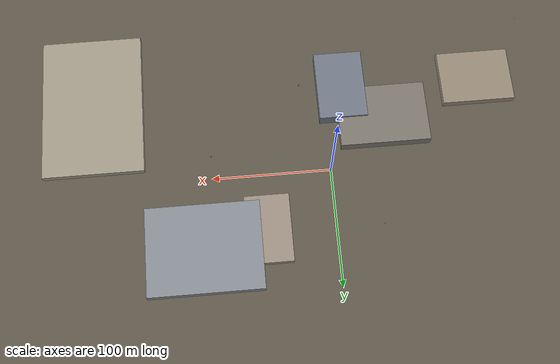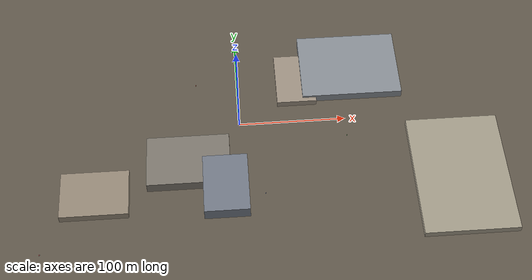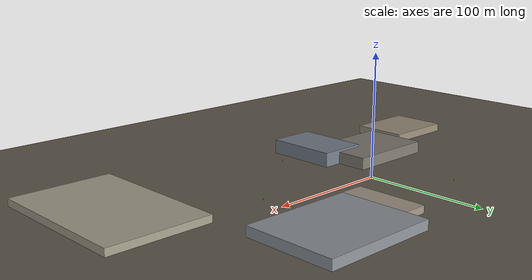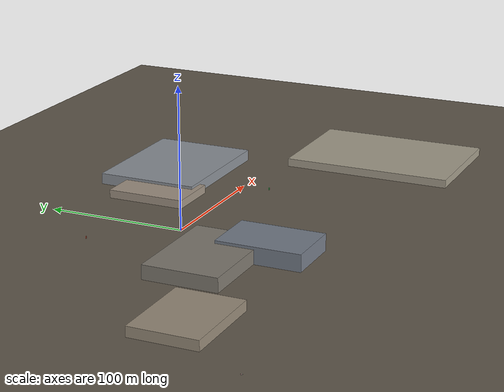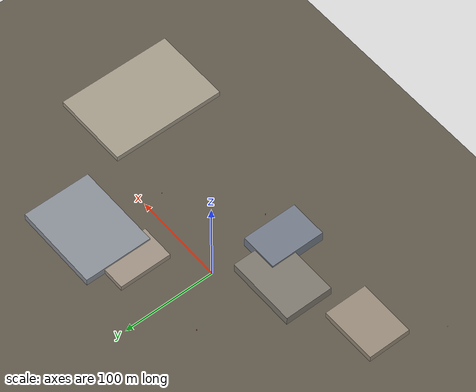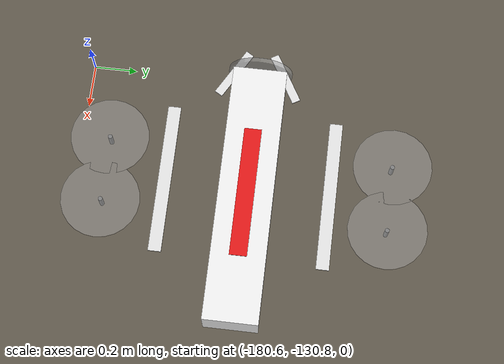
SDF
<sdf version="1.9">
 <world name="surveillance_zone">
  <physics name="1ms" type="ode">
   <max_step_size>0.001</max_step_size>
   <real_time_factor>1.0</real_time_factor>
  </physics>
  <light name="sun" type="directional">
   <pose>0 0 100 0 0 0</pose>
   <diffuse>0.85 0.85 0.85 1</diffuse>
   <specular>0.2 0.2 0.2 1</specular>
   <direction>0.5 -0.5 -1</direction>
  </light>
  <light name="ambient_fill" type="directional">
   <cast_shadows>false</cast_shadows>
   <pose>0 0 50 0 0 0</pose>
   <diffuse>0.4 0.4 0.45 1</diffuse>
   <specular>0.0 0.0 0.0 1</specular>
   <direction>-0.5 0.5 -1</direction>
  </light>
  <model name="ground_plane">
   <static>true</static>
   <link name="link">
    <collision name="collision">
     <geometry><plane><normal>0 0 1</normal><size>1000 1000</size></plane></geometry>
    </collision>
    <visual name="visual">
     <geometry><plane><normal>0 0 1</normal><size>1000 1000</size></plane></geometry>
     <material>
      <ambient>0.30 0.28 0.25 1</ambient>
      <diffuse>0.38 0.35 0.30 1</diffuse>
      <specular>0.05 0.05 0.05 1</specular>
     </material>
    </visual>
   </link>
  </model>
  <model name="building_0">
   <static>true</static>
   <pose>199.0 -73.0 3.0 0 0 0</pose>
   <link name="link">
    <collision name="col"><geometry><box><size>85.6 124.8 6.0</size></box></geometry></collision>
    <visual name="vis">
     <geometry><box><size>85.6 124.8 6.0</size></box></geometry>
     <material>
      <ambient>0.60 0.58 0.52 1</ambient>
      <diffuse>0.65 0.62 0.55 1</diffuse>
      <specular>0.1 0.1 0.1 1</specular>
     </material>
    </visual>
   </link>
  </model>
  <model name="building_1">
   <static>true</static>
   <pose>109.6 60.4 4.0 0 0 0</pose>
   <link name="link">
    <collision name="col"><geometry><box><size>95.2 73.9 8.0</size></box></geometry></collision>
    <visual name="vis">
     <geometry><box><size>95.2 73.9 8.0</size></box></geometry>
     <material>
      <ambient>0.50 0.52 0.55 1</ambient>
      <diffuse>0.55 0.57 0.60 1</diffuse>
      <specular>0.15 0.15 0.15 1</specular>
     </material>
    </visual>
   </link>
  </model>
  <model name="building_2">
   <static>true</static>
   <pose>-48.6 -43.9 5.0 0 0 0</pose>
   <link name="link">
    <collision name="col"><geometry><box><size>76.2 52.7 10.0</size></box></geometry></collision>
    <visual name="vis">
     <geometry><box><size>76.2 52.7 10.0</size></box></geometry>
     <material>
      <ambient>0.45 0.43 0.40 1</ambient>
      <diffuse>0.50 0.48 0.44 1</diffuse>
      <specular>0.1 0.1 0.1 1</specular>
     </material>
    </visual>
   </link>
  </model>
  <model name="building_3">
   <static>true</static>
   <pose>-133.6 -73.6 3.5 0 0 0</pose>
   <link name="link">
    <collision name="col"><geometry><box><size>61.7 46.8 7.0</size></box></geometry></collision>
    <visual name="vis">
     <geometry><box><size>61.7 46.8 7.0</size></box></geometry>
     <material>
      <ambient>0.55 0.50 0.45 1</ambient>
      <diffuse>0.60 0.55 0.48 1</diffuse>
      <specular>0.08 0.08 0.08 1</specular>
     </material>
    </visual>
   </link>
  </model>
  <model name="building_4">
   <static>true</static>
   <pose>-15.2 -72.9 6.0 0 0 0</pose>
   <link name="link">
    <collision name="col"><geometry><box><size>41.0 60.1 12.0</size></box></geometry></collision>
    <visual name="vis">
     <geometry><box><size>41.0 60.1 12.0</size></box></geometry>
     <material>
      <ambient>0.42 0.45 0.50 1</ambient>
      <diffuse>0.46 0.49 0.54 1</diffuse>
      <specular>0.2 0.2 0.2 1</specular>
     </material>
    </visual>
   </link>
  </model>
  <model name="building_5">
   <static>true</static>
   <pose>56.1 47.9 3.0 0 0 0</pose>
   <link name="link">
    <collision name="col"><geometry><box><size>37.5 57.3 6.0</size></box></geometry></collision>
    <visual name="vis">
     <geometry><box><size>37.5 57.3 6.0</size></box></geometry>
     <material>
      <ambient>0.58 0.54 0.48 1</ambient>
      <diffuse>0.63 0.58 0.52 1</diffuse>
      <specular>0.08 0.08 0.08 1</specular>
     </material>
    </visual>
   </link>
  </model>
  <model name="personne_quai">
   <static>true</static>
   <pose>20 -80 0 0 0 0</pose>
   <link name="link">
    <visual name="corps">
     <pose>0 0 0.85 0 0 0</pose>
     <geometry><cylinder><radius>0.25</radius><length>1.7</length></cylinder></geometry>
     <material><ambient>0.2 0.4 0.8 1</ambient><diffuse>0.2 0.4 0.8 1</diffuse></material>
    </visual>
    <visual name="tete">
     <pose>0 0 1.85 0 0 0</pose>
     <geometry><sphere><radius>0.15</radius></sphere></geometry>
     <material><ambient>0.85 0.7 0.55 1</ambient><diffuse>0.85 0.7 0.55 1</diffuse></material>
    </visual>
    <collision name="col">
     <pose>0 0 0.85 0 0 0</pose>
     <geometry><cylinder><radius>0.25</radius><length>1.7</length></cylinder></geometry>
    </collision>
   </link>
  </model>
  <model name="personne_industrielle">
   <static>true</static>
   <pose>-40 50 0 0 0 0</pose>
   <link name="link">
    <visual name="corps">
     <pose>0 0 0.85 0 0 0</pose>
     <geometry><cylinder><radius>0.25</radius><length>1.7</length></cylinder></geometry>
     <material><ambient>0.8 0.3 0.2 1</ambient><diffuse>0.8 0.3 0.2 1</diffuse></material>
    </visual>
    <visual name="tete">
     <pose>0 0 1.85 0 0 0</pose>
     <geometry><sphere><radius>0.15</radius></sphere></geometry>
     <material><ambient>0.85 0.7 0.55 1</ambient><diffuse>0.85 0.7 0.55 1</diffuse></material>
    </visual>
    <collision name="col">
     <pose>0 0 0.85 0 0 0</pose>
     <geometry><cylinder><radius>0.25</radius><length>1.7</length></cylinder></geometry>
    </collision>
   </link>
  </model>
  <model name="personne_perimetre">
   <static>true</static>
   <pose>100 -20 0 0 0 0</pose>
   <link name="link">
    <visual name="corps">
     <pose>0 0 0.85 0 0 0</pose>
     <geometry><cylinder><radius>0.25</radius><length>1.7</length></cylinder></geometry>
     <material><ambient>0.2 0.7 0.3 1</ambient><diffuse>0.2 0.7 0.3 1</diffuse></material>
    </visual>
    <visual name="tete">
     <pose>0 0 1.85 0 0 0</pose>
     <geometry><sphere><radius>0.15</radius></sphere></geometry>
     <material><ambient>0.85 0.7 0.55 1</ambient><diffuse>0.85 0.7 0.55 1</diffuse></material>
    </visual>
    <collision name="col">
     <pose>0 0 0.85 0 0 0</pose>
     <geometry><cylinder><radius>0.25</radius><length>1.7</length></cylinder></geometry>
    </collision>
   </link>
  </model>
  <include><name>isr_drone</name><uri>model://isr_drone</uri><pose>-180 -130 0.1 0 0 0</pose></include>
 </world>
</sdf>

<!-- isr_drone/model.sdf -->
<sdf version="1.9">
  <model name="isr_drone">
    <static>false</static>

    <!-- BASE LINK — Fuselage VTOL                  -->
    <link name="base_link">
      <pose>0 0 0 0 0 0</pose>

      <inertial>
        <mass>4.5</mass>
        <inertia>
          <!-- I = m/12 * (b² + c²) pour un box -->
          <ixx>0.0353</ixx>
          <iyy>0.5535</iyy>
          <izz>0.5625</izz>
          <ixy>0</ixy>
          <ixz>0</ixz>
          <iyz>0</iyz>
        </inertia>
      </inertial>

      <!-- Fuselage principal — blanc mat -->
      <visual name="fuselage_visual">
        <geometry>
          <box><size>1.2 0.25 0.18</size></box>
        </geometry>
        <material>
          <ambient>0.9 0.9 0.9 1</ambient>
          <diffuse>0.95 0.95 0.95 1</diffuse>
          <specular>0.2 0.2 0.2 1</specular>
        </material>
      </visual>

      <!-- Bande rouge identification sur le dessus -->
      <visual name="stripe_visual">
        <pose>0 0 0.091 0 0 0</pose>
        <geometry>
          <box><size>0.6 0.08 0.005</size></box>
        </geometry>
        <material>
          <ambient>0.8 0.0 0.0 1</ambient>
          <diffuse>0.9 0.1 0.1 1</diffuse>
        </material>
      </visual>

      <collision name="fuselage_collision">
        <geometry>
          <box><size>1.2 0.25 0.18</size></box>
        </geometry>
      </collision>
    </link>

    <!-- AILES                                      -->

    <!-- Aile gauche -->
    <link name="wing_left">
      <pose relative_to="base_link">-0.05 0.38 0 0 0 0</pose>
      <inertial>
        <mass>0.15</mass>
        <inertia>
          <ixx>0.00005</ixx><iyy>0.0061</iyy><izz>0.0061</izz>
          <ixy>0</ixy><ixz>0</ixz><iyz>0</iyz>
        </inertia>
      </inertial>
      <visual name="wing_left_visual">
        <geometry>
          <box><size>0.7 0.06 0.008</size></box>
        </geometry>
        <material>
          <ambient>0.85 0.85 0.85 1</ambient>
          <diffuse>0.9 0.9 0.9 1</diffuse>
        </material>
      </visual>
    </link>
    <joint name="wing_left_joint" type="fixed">
      <parent>base_link</parent>
      <child>wing_left</child>
    </joint>

    <!-- Aile droite -->
    <link name="wing_right">
      <pose relative_to="base_link">-0.05 -0.38 0 0 0 0</pose>
      <inertial>
        <mass>0.15</mass>
        <inertia>
          <ixx>0.00005</ixx><iyy>0.0061</iyy><izz>0.0061</izz>
          <ixy>0</ixy><ixz>0</ixz><iyz>0</iyz>
        </inertia>
      </inertial>
      <visual name="wing_right_visual">
        <geometry>
          <box><size>0.7 0.06 0.008</size></box>
        </geometry>
        <material>
          <ambient>0.85 0.85 0.85 1</ambient>
          <diffuse>0.9 0.9 0.9 1</diffuse>
        </material>
      </visual>
    </link>
    <joint name="wing_right_joint" type="fixed">
      <parent>base_link</parent>
      <child>wing_right</child>
    </joint>

    <!-- EMPENNAGE V                                -->

    <!-- Queue gauche -->
    <link name="tail_left">
      <pose relative_to="base_link">-0.58 0.12 0.05 0 0 0.52</pose>
      <inertial>
        <mass>0.05</mass>
        <inertia>
          <ixx>0.00001</ixx><iyy>0.00026</iyy><izz>0.00026</izz>
          <ixy>0</ixy><ixz>0</ixz><iyz>0</iyz>
        </inertia>
      </inertial>
      <visual name="tail_left_visual">
        <geometry>
          <box><size>0.25 0.04 0.006</size></box>
        </geometry>
        <material>
          <ambient>0.85 0.85 0.85 1</ambient>
          <diffuse>0.9 0.9 0.9 1</diffuse>
        </material>
      </visual>
    </link>
    <joint name="tail_left_joint" type="fixed">
      <parent>base_link</parent>
      <child>tail_left</child>
    </joint>

    <!-- Queue droite -->
    <link name="tail_right">
      <pose relative_to="base_link">-0.58 -0.12 0.05 0 0 -0.52</pose>
      <inertial>
        <mass>0.05</mass>
        <inertia>
          <ixx>0.00001</ixx><iyy>0.00026</iyy><izz>0.00026</izz>
          <ixy>0</ixy><ixz>0</ixz><iyz>0</iyz>
        </inertia>
      </inertial>
      <visual name="tail_right_visual">
        <geometry>
          <box><size>0.25 0.04 0.006</size></box>
        </geometry>
        <material>
          <ambient>0.85 0.85 0.85 1</ambient>
          <diffuse>0.9 0.9 0.9 1</diffuse>
        </material>
      </visual>
    </link>
    <joint name="tail_right_joint" type="fixed">
      <parent>base_link</parent>
      <child>tail_right</child>
    </joint>

    <!-- 4 NACELLES ROTORS VTOL                     -->

    <!-- Rotor Front-Left -->
    <link name="rotor_fl">
      <pose relative_to="base_link">0.1 0.65 0.02 0 0 0</pose>
      <inertial>
        <mass>0.03</mass>
        <inertia>
          <ixx>0.00001</ixx><iyy>0.00001</iyy><izz>0.00001</izz>
          <ixy>0</ixy><ixz>0</ixz><iyz>0</iyz>
        </inertia>
      </inertial>
      <!-- Nacelle -->
      <visual name="nacelle_fl_visual">
        <geometry>
          <cylinder><radius>0.01</radius><length>0.08</length></cylinder>
        </geometry>
        <material>
          <ambient>0.3 0.3 0.3 1</ambient>
          <diffuse>0.4 0.4 0.4 1</diffuse>
        </material>
      </visual>
      <!-- Disque rotor transparent -->
      <visual name="disc_fl_visual">
        <pose>0 0 0.04 0 0 0</pose>
        <geometry>
          <cylinder><radius>0.18</radius><length>0.005</length></cylinder>
        </geometry>
        <material>
          <ambient>0.6 0.6 0.6 0.4</ambient>
          <diffuse>0.7 0.7 0.7 0.4</diffuse>
        </material>
      </visual>
    </link>
    <joint name="rotor_fl_joint" type="fixed">
      <parent>base_link</parent>
      <child>rotor_fl</child>
    </joint>

    <!-- Rotor Front-Right -->
    <link name="rotor_fr">
      <pose relative_to="base_link">0.1 -0.65 0.02 0 0 0</pose>
      <inertial>
        <mass>0.03</mass>
        <inertia>
          <ixx>0.00001</ixx><iyy>0.00001</iyy><izz>0.00001</izz>
          <ixy>0</ixy><ixz>0</ixz><iyz>0</iyz>
        </inertia>
      </inertial>
      <visual name="nacelle_fr_visual">
        <geometry>
          <cylinder><radius>0.01</radius><length>0.08</length></cylinder>
        </geometry>
        <material>
          <ambient>0.3 0.3 0.3 1</ambient>
          <diffuse>0.4 0.4 0.4 1</diffuse>
        </material>
      </visual>
      <visual name="disc_fr_visual">
        <pose>0 0 0.04 0 0 0</pose>
        <geometry>
          <cylinder><radius>0.18</radius><length>0.005</length></cylinder>
        </geometry>
        <material>
          <ambient>0.6 0.6 0.6 0.4</ambient>
          <diffuse>0.7 0.7 0.7 0.4</diffuse>
        </material>
      </visual>
    </link>
    <joint name="rotor_fr_joint" type="fixed">
      <parent>base_link</parent>
      <child>rotor_fr</child>
    </joint>

    <!-- Rotor Rear-Left -->
    <link name="rotor_rl">
      <pose relative_to="base_link">-0.2 0.65 0.02 0 0 0</pose>
      <inertial>
        <mass>0.03</mass>
        <inertia>
          <ixx>0.00001</ixx><iyy>0.00001</iyy><izz>0.00001</izz>
          <ixy>0</ixy><ixz>0</ixz><iyz>0</iyz>
        </inertia>
      </inertial>
      <visual name="nacelle_rl_visual">
        <geometry>
          <cylinder><radius>0.01</radius><length>0.08</length></cylinder>
        </geometry>
        <material>
          <ambient>0.3 0.3 0.3 1</ambient>
          <diffuse>0.4 0.4 0.4 1</diffuse>
        </material>
      </visual>
      <visual name="disc_rl_visual">
        <pose>0 0 0.04 0 0 0</pose>
        <geometry>
          <cylinder><radius>0.18</radius><length>0.005</length></cylinder>
        </geometry>
        <material>
          <ambient>0.6 0.6 0.6 0.4</ambient>
          <diffuse>0.7 0.7 0.7 0.4</diffuse>
        </material>
      </visual>
    </link>
    <joint name="rotor_rl_joint" type="fixed">
      <parent>base_link</parent>
      <child>rotor_rl</child>
    </joint>

    <!-- Rotor Rear-Right -->
    <link name="rotor_rr">
      <pose relative_to="base_link">-0.2 -0.65 0.02 0 0 0</pose>
      <inertial>
        <mass>0.03</mass>
        <inertia>
          <ixx>0.00001</ixx><iyy>0.00001</iyy><izz>0.00001</izz>
          <ixy>0</ixy><ixz>0</ixz><iyz>0</iyz>
        </inertia>
      </inertial>
      <visual name="nacelle_rr_visual">
        <geometry>
          <cylinder><radius>0.01</radius><length>0.08</length></cylinder>
        </geometry>
        <material>
          <ambient>0.3 0.3 0.3 1</ambient>
          <diffuse>0.4 0.4 0.4 1</diffuse>
        </material>
      </visual>
      <visual name="disc_rr_visual">
        <pose>0 0 0.04 0 0 0</pose>
        <geometry>
          <cylinder><radius>0.18</radius><length>0.005</length></cylinder>
        </geometry>
        <material>
          <ambient>0.6 0.6 0.6 0.4</ambient>
          <diffuse>0.7 0.7 0.7 0.4</diffuse>
        </material>
      </visual>
    </link>
    <joint name="rotor_rr_joint" type="fixed">
      <parent>base_link</parent>
      <child>rotor_rr</child>
    </joint>

    <!-- HÉLICE PUSHER ARRIÈRE                      -->
    <link name="pusher_prop">
      <pose relative_to="base_link">-0.62 0 0 0 1.5708 0</pose>
      <inertial>
        <mass>0.02</mass>
        <inertia>
          <ixx>0.00001</ixx><iyy>0.00001</iyy><izz>0.00001</izz>
          <ixy>0</ixy><ixz>0</ixz><iyz>0</iyz>
        </inertia>
      </inertial>
      <visual name="pusher_visual">
        <geometry>
          <cylinder><radius>0.15</radius><length>0.02</length></cylinder>
        </geometry>
        <material>
          <ambient>0.5 0.5 0.5 0.6</ambient>
          <diffuse>0.6 0.6 0.6 0.6</diffuse>
        </material>
      </visual>
    </link>
    <joint name="pusher_prop_joint" type="fixed">
      <parent>base_link</parent>
      <child>pusher_prop</child>
    </joint>

    <!-- CAMÉRA NADIR                               -->
    <link name="camera_link">
      <!-- Sous le fuselage, pointant vers le bas (rotation 90° en pitch) -->
      <pose relative_to="base_link">0.1 0 -0.1 0 1.5708 0</pose>

      <inertial>
        <mass>0.05</mass>
        <inertia>
          <ixx>0.00001</ixx><iyy>0.00001</iyy><izz>0.00001</izz>
          <ixy>0</ixy><ixz>0</ixz><iyz>0</iyz>
        </inertia>
      </inertial>

      <visual name="camera_visual">
        <geometry>
          <box><size>0.03 0.03 0.03</size></box>
        </geometry>
        <material>
          <ambient>0.1 0.1 0.8 1</ambient>
          <diffuse>0.2 0.2 0.9 1</diffuse>
        </material>
      </visual>

      <sensor name="camera" type="camera">
        <always_on>true</always_on>
        <update_rate>10</update_rate>
        <visualize>true</visualize>
        <camera>
          <horizontal_fov>1.047</horizontal_fov>
          <image>
            <width>640</width>
            <height>480</height>
            <format>R8G8B8</format>
          </image>
          <clip>
            <near>0.1</near>
            <far>200</far>
          </clip>
        </camera>
      </sensor>
    </link>
    <joint name="camera_joint" type="fixed">
      <parent>base_link</parent>
      <child>camera_link</child>
    </joint>

    <!-- IMU                                        -->
    <link name="imu_link">
      <pose relative_to="base_link">0 0 0 0 0 0</pose>

      <inertial>
        <mass>0.01</mass>
        <inertia>
          <ixx>0.00001</ixx><iyy>0.00001</iyy><izz>0.00001</izz>
          <ixy>0</ixy><ixz>0</ixz><iyz>0</iyz>
        </inertia>
      </inertial>

      <sensor name="imu" type="imu">
        <always_on>true</always_on>
        <update_rate>100</update_rate>
        <imu>
          <angular_velocity>
            <x><noise type="gaussian"><mean>0</mean><stddev>0.0002</stddev></noise></x>
            <y><noise type="gaussian"><mean>0</mean><stddev>0.0002</stddev></noise></y>
            <z><noise type="gaussian"><mean>0</mean><stddev>0.0002</stddev></noise></z>
          </angular_velocity>
          <linear_acceleration>
            <x><noise type="gaussian"><mean>0</mean><stddev>0.017</stddev></noise></x>
            <y><noise type="gaussian"><mean>0</mean><stddev>0.017</stddev></noise></y>
            <z><noise type="gaussian"><mean>0</mean><stddev>0.017</stddev></noise></z>
          </linear_acceleration>
        </imu>
      </sensor>
    </link>
    <joint name="imu_joint" type="fixed">
      <parent>base_link</parent>
      <child>imu_link</child>
    </joint>

    <!-- PLUGINS                                    -->

    <!-- Camera sensor system -->
    <plugin filename="gz-sim-sensors-system"
            name="gz::sim::systems::Sensors">
      <render_engine>ogre2</render_engine>
    </plugin>

    <!-- IMU sensor system -->
    <plugin filename="gz-sim-imu-system"
            name="gz::sim::systems::Imu"/>

    <!-- PosePublisher — publie les TFs du modèle vers Gazebo transport -->
    <plugin filename="gz-sim-pose-publisher-system"
            name="gz::sim::systems::PosePublisher">
      <publish_link_pose>true</publish_link_pose>
      <publish_sensor_pose>true</publish_sensor_pose>
      <publish_collision_pose>false</publish_collision_pose>
      <publish_visual_pose>false</publish_visual_pose>
      <publish_nested_model_pose>false</publish_nested_model_pose>
      <static_publisher>true</static_publisher>
      <static_update_frequency>1</static_update_frequency>
      <update_frequency>50</update_frequency>
    </plugin>

    <!-- OdometryPublisher — publie l'odom du drone -->
    <plugin filename="gz-sim-odometry-publisher-system"
            name="gz::sim::systems::OdometryPublisher">
      <odom_frame>odom</odom_frame>
      <robot_base_frame>base_link</robot_base_frame>
      <odom_publish_frequency>50</odom_publish_frequency>
      <dimensions>3</dimensions>
    </plugin>

    <!-- VelocityControl — contrôle cmd_vel direct -->
    <plugin filename="gz-sim-velocity-control-system"
            name="gz::sim::systems::VelocityControl">
      <topic>/model/isr_drone/cmd_vel</topic>
    </plugin>

  </model>
</sdf>
